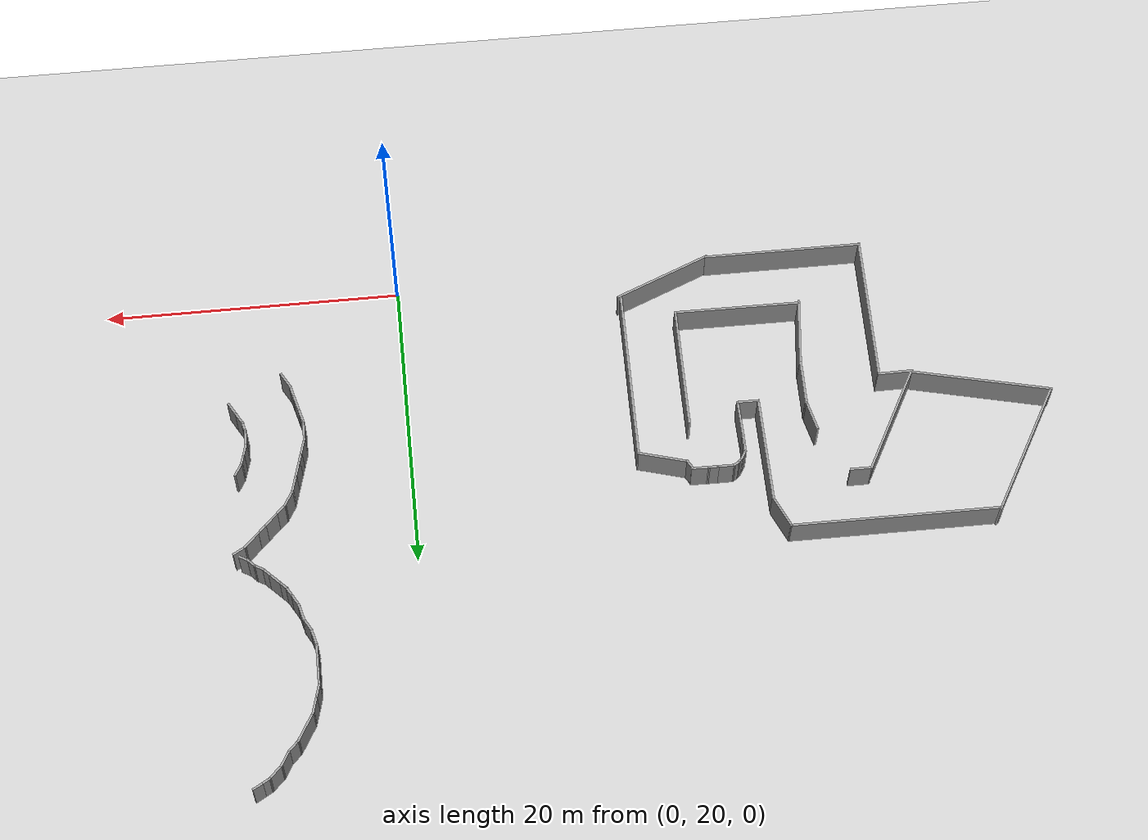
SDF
<sdf version="1.7">
 <world name="default">
  <model name="ground_plane">
   <static>1</static>
   <link name="link">
    <collision name="collision">
     <geometry><plane><normal>0 0 1</normal><size>100 100</size></plane></geometry>
     <surface><friction><ode><mu>100</mu><mu2>50</mu2></ode></friction></surface>
    </collision>
    <visual name="visual">
     <cast_shadows>0</cast_shadows>
     <geometry><plane><normal>0 0 1</normal><size>100 100</size></plane></geometry>
     <material>
      <script><uri>file://media/materials/scripts/gazebo.material</uri><name>Gazebo/Grey</name></script>
     </material>
    </visual>
   </link>
  </model>
  <model name="test2_adv">
   <pose>-29.1747 30.5612 0 0 -0 0</pose>
   <link name="Wall_0">
    <collision name="Wall_0_Collision">
     <geometry><box><size>9.6004 0.15 2.5</size></box></geometry>
     <pose>0 0 1.25 0 -0 0</pose>
    </collision>
    <visual name="Wall_0_Visual">
     <pose>0 0 1.25 0 -0 0</pose>
     <geometry><box><size>9.6004 0.15 2.5</size></box></geometry>
     <material>
      <script><uri>file://media/materials/scripts/gazebo.material</uri><name>Gazebo/Grey</name></script>
      <ambient>1 1 1 1</ambient>
     </material>
     <meta><layer>0</layer></meta>
    </visual>
    <pose>-9.52731 0.84755 0 0 -0 -0.228759</pose>
   </link>
   <link name="Wall_1">
    <collision name="Wall_1_Collision">
     <geometry><box><size>2.36819 0.15 2.5</size></box></geometry>
     <pose>0 0 1.25 0 -0 0</pose>
    </collision>
    <visual name="Wall_1_Visual">
     <pose>0 0 1.25 0 -0 0</pose>
     <geometry><box><size>2.36819 0.15 2.5</size></box></geometry>
     <material>
      <script><uri>file://media/materials/scripts/gazebo.material</uri><name>Gazebo/Grey</name></script>
      <ambient>1 1 1 1</ambient>
     </material>
     <meta><layer>0</layer></meta>
    </visual>
    <pose>-3.85634 -0.28515 0 0 -0 0.017384</pose>
   </link>
   <link name="Wall_10">
    <collision name="Wall_10_Collision">
     <geometry><box><size>1.25 0.15 2.5</size></box></geometry>
     <pose>0 0 1.25 0 -0 0</pose>
    </collision>
    <visual name="Wall_10_Visual">
     <pose>0 0 1.25 0 -0 0</pose>
     <geometry><box><size>1.25 0.15 2.5</size></box></geometry>
     <material>
      <script><uri>file://media/materials/scripts/gazebo.material</uri><name>Gazebo/Grey</name></script>
      <ambient>1 1 1 1</ambient>
     </material>
     <meta><layer>0</layer></meta>
    </visual>
    <pose>8.32385 5.58372 0 0 -0 3.14159</pose>
   </link>
   <link name="Wall_11">
    <collision name="Wall_11_Collision">
     <geometry><box><size>0.5 0.15 2.5</size></box></geometry>
     <pose>0 0 1.25 0 -0 0</pose>
    </collision>
    <visual name="Wall_11_Visual">
     <pose>0 0 1.25 0 -0 0</pose>
     <geometry><box><size>0.5 0.15 2.5</size></box></geometry>
     <material>
      <script><uri>file://media/materials/scripts/gazebo.material</uri><name>Gazebo/Grey</name></script>
      <ambient>1 1 1 1</ambient>
     </material>
     <meta><layer>0</layer></meta>
    </visual>
    <pose>7.62229 5.49622 0 0 -0 -2.61799</pose>
   </link>
   <link name="Wall_12">
    <collision name="Wall_12_Collision">
     <geometry><box><size>0.5 0.15 2.5</size></box></geometry>
     <pose>0 0 1.25 0 -0 0</pose>
    </collision>
    <visual name="Wall_12_Visual">
     <pose>0 0 1.25 0 -0 0</pose>
     <geometry><box><size>0.5 0.15 2.5</size></box></geometry>
     <material>
      <script><uri>file://media/materials/scripts/gazebo.material</uri><name>Gazebo/Grey</name></script>
      <ambient>1 1 1 1</ambient>
     </material>
     <meta><layer>0</layer></meta>
    </visual>
    <pose>7.34699 5.28497 0 0 -0 -2.35619</pose>
   </link>
   <link name="Wall_13">
    <collision name="Wall_13_Collision">
     <geometry><box><size>0.75 0.15 2.5</size></box></geometry>
     <pose>0 0 1.25 0 -0 0</pose>
    </collision>
    <visual name="Wall_13_Visual">
     <pose>0 0 1.25 0 -0 0</pose>
     <geometry><box><size>0.75 0.15 2.5</size></box></geometry>
     <material>
      <script><uri>file://media/materials/scripts/gazebo.material</uri><name>Gazebo/Grey</name></script>
      <ambient>1 1 1 1</ambient>
     </material>
     <meta><layer>0</layer></meta>
    </visual>
    <pose>7.07325 4.90142 0 0 -0 -2.0944</pose>
   </link>
   <link name="Wall_14">
    <collision name="Wall_14_Collision">
     <geometry><box><size>0.75 0.15 2.5</size></box></geometry>
     <pose>0 0 1.25 0 -0 0</pose>
    </collision>
    <visual name="Wall_14_Visual">
     <pose>0 0 1.25 0 -0 0</pose>
     <geometry><box><size>0.75 0.15 2.5</size></box></geometry>
     <material>
      <script><uri>file://media/materials/scripts/gazebo.material</uri><name>Gazebo/Grey</name></script>
      <ambient>1 1 1 1</ambient>
     </material>
     <meta><layer>0</layer></meta>
    </visual>
    <pose>6.92325 4.34161 0 0 -0 -1.5708</pose>
   </link>
   <link name="Wall_15">
    <collision name="Wall_15_Collision">
     <geometry><box><size>0.75 0.15 2.5</size></box></geometry>
     <pose>0 0 1.25 0 -0 0</pose>
    </collision>
    <visual name="Wall_15_Visual">
     <pose>0 0 1.25 0 -0 0</pose>
     <geometry><box><size>0.75 0.15 2.5</size></box></geometry>
     <material>
      <script><uri>file://media/materials/scripts/gazebo.material</uri><name>Gazebo/Grey</name></script>
      <ambient>1 1 1 1</ambient>
     </material>
     <meta><layer>0</layer></meta>
    </visual>
    <pose>6.92325 3.74161 0 0 -0 -1.5708</pose>
   </link>
   <link name="Wall_2">
    <collision name="Wall_2_Collision">
     <geometry><box><size>10.2153 0.15 2.5</size></box></geometry>
     <pose>0 0 1.25 0 -0 0</pose>
    </collision>
    <visual name="Wall_2_Visual">
     <pose>0 0 1.25 0 -0 0</pose>
     <geometry><box><size>10.2153 0.15 2.5</size></box></geometry>
     <material>
      <script><uri>file://media/materials/scripts/gazebo.material</uri><name>Gazebo/Grey</name></script>
      <ambient>1 1 1 1</ambient>
     </material>
     <meta><layer>0</layer></meta>
    </visual>
    <pose>-2.76474 -5.34473 0 0 -0 -1.57427</pose>
   </link>
   <link name="Wall_28">
    <collision name="Wall_28_Collision">
     <geometry><box><size>7.33138 0.15 2.5</size></box></geometry>
     <pose>0 0 1.25 0 -0 0</pose>
    </collision>
    <visual name="Wall_28_Visual">
     <pose>0 0 1.25 0 -0 0</pose>
     <geometry><box><size>7.33138 0.15 2.5</size></box></geometry>
     <material>
      <script><uri>file://media/materials/scripts/gazebo.material</uri><name>Gazebo/Grey</name></script>
      <ambient>1 1 1 1</ambient>
     </material>
     <meta><layer>0</layer></meta>
    </visual>
    <pose>5.5422 4.56826 0 0 -0 1.58681</pose>
   </link>
   <link name="Wall_29">
    <collision name="Wall_29_Collision">
     <geometry><box><size>2.38555 0.15 2.5</size></box></geometry>
     <pose>0 0 1.25 0 -0 0</pose>
    </collision>
    <visual name="Wall_29_Visual">
     <pose>0 0 1.25 0 -0 0</pose>
     <geometry><box><size>2.38555 0.15 2.5</size></box></geometry>
     <material>
      <script><uri>file://media/materials/scripts/gazebo.material</uri><name>Gazebo/Grey</name></script>
      <ambient>1 1 1 1</ambient>
     </material>
     <meta><layer>0</layer></meta>
    </visual>
    <pose>5.02072 9.25587 0 0 -0 1.99883</pose>
   </link>
   <link name="Wall_3">
    <collision name="Wall_3_Collision">
     <geometry><box><size>10.7514 0.15 2.5</size></box></geometry>
     <pose>0 0 1.25 0 -0 0</pose>
    </collision>
    <visual name="Wall_3_Visual">
     <pose>0 0 1.25 0 -0 0</pose>
     <geometry><box><size>10.7514 0.15 2.5</size></box></geometry>
     <material>
      <script><uri>file://media/materials/scripts/gazebo.material</uri><name>Gazebo/Grey</name></script>
      <ambient>1 1 1 1</ambient>
     </material>
     <meta><layer>0</layer></meta>
    </visual>
    <pose>2.51836 -10.3207 0 0 -0 0.001964</pose>
   </link>
   <link name="Wall_30">
    <collision name="Wall_30_Collision">
     <geometry><box><size>14.1529 0.15 2.5</size></box></geometry>
     <pose>0 0 1.25 0 -0 0</pose>
    </collision>
    <visual name="Wall_30_Visual">
     <pose>0 0 1.25 0 -0 0</pose>
     <geometry><box><size>14.1529 0.15 2.5</size></box></geometry>
     <material>
      <script><uri>file://media/materials/scripts/gazebo.material</uri><name>Gazebo/Grey</name></script>
      <ambient>1 1 1 1</ambient>
     </material>
     <meta><layer>0</layer></meta>
    </visual>
    <pose>-2.44468 10.2698 0 0 -0 -3.14116</pose>
   </link>
   <link name="Wall_31">
    <collision name="Wall_31_Collision">
     <geometry><box><size>9.72169 0.15 2.5</size></box></geometry>
     <pose>0 0 1.25 0 -0 0</pose>
    </collision>
    <visual name="Wall_31_Visual">
     <pose>0 0 1.25 0 -0 0</pose>
     <geometry><box><size>9.72169 0.15 2.5</size></box></geometry>
     <material>
      <script><uri>file://media/materials/scripts/gazebo.material</uri><name>Gazebo/Grey</name></script>
      <ambient>1 1 1 1</ambient>
     </material>
     <meta><layer>0</layer></meta>
    </visual>
    <pose>-11.6952 6.18544 0 0 -0 -2.08207</pose>
   </link>
   <link name="Wall_33">
    <collision name="Wall_33_Collision">
     <geometry><box><size>7.98429 0.15 2.5</size></box></geometry>
     <pose>0 0 1.25 0 -0 0</pose>
    </collision>
    <visual name="Wall_33_Visual">
     <pose>0 0 1.25 0 -0 0</pose>
     <geometry><box><size>7.98429 0.15 2.5</size></box></geometry>
     <material>
      <script><uri>file://media/materials/scripts/gazebo.material</uri><name>Gazebo/Grey</name></script>
      <ambient>1 1 1 1</ambient>
     </material>
     <meta><layer>0</layer></meta>
    </visual>
    <pose>-3.11952 3.15051 0 0 -0 -2.06149</pose>
   </link>
   <link name="Wall_35">
    <collision name="Wall_35_Collision">
     <geometry><box><size>1.5 0.15 2.5</size></box></geometry>
     <pose>0 0 1.25 0 -0 0</pose>
    </collision>
    <visual name="Wall_35_Visual">
     <pose>0 0 1.25 0 -0 0</pose>
     <geometry><box><size>1.5 0.15 2.5</size></box></geometry>
     <material>
      <script><uri>file://media/materials/scripts/gazebo.material</uri><name>Gazebo/Grey</name></script>
      <ambient>1 1 1 1</ambient>
     </material>
     <meta><layer>0</layer></meta>
    </visual>
    <pose>-0.598603 6.60545 0 0 -0 0</pose>
   </link>
   <link name="Wall_38">
    <collision name="Wall_38_Collision">
     <geometry><box><size>2.15459 0.15 2.5</size></box></geometry>
     <pose>0 0 1.25 0 -0 0</pose>
    </collision>
    <visual name="Wall_38_Visual">
     <pose>0 0 1.25 0 -0 0</pose>
     <geometry><box><size>2.15459 0.15 2.5</size></box></geometry>
     <material>
      <script><uri>file://media/materials/scripts/gazebo.material</uri><name>Gazebo/Grey</name></script>
      <ambient>1 1 1 1</ambient>
     </material>
     <meta><layer>0</layer></meta>
    </visual>
    <pose>2.15913 2.40387 0 0 -0 -1.3296</pose>
   </link>
   <link name="Wall_39">
    <collision name="Wall_39_Collision">
     <geometry><box><size>3.25 0.15 2.5</size></box></geometry>
     <pose>0 0 1.25 0 -0 0</pose>
    </collision>
    <visual name="Wall_39_Visual">
     <pose>0 0 1.25 0 -0 0</pose>
     <geometry><box><size>3.25 0.15 2.5</size></box></geometry>
     <material>
      <script><uri>file://media/materials/scripts/gazebo.material</uri><name>Gazebo/Grey</name></script>
      <ambient>1 1 1 1</ambient>
     </material>
     <meta><layer>0</layer></meta>
    </visual>
    <pose>2.39853 -0.066214 0 0 -0 -1.5708</pose>
   </link>
   <link name="Wall_4">
    <collision name="Wall_4_Collision">
     <geometry><box><size>6.96845 0.15 2.5</size></box></geometry>
     <pose>0 0 1.25 0 -0 0</pose>
    </collision>
    <visual name="Wall_4_Visual">
     <pose>0 0 1.25 0 -0 0</pose>
     <geometry><box><size>6.96845 0.15 2.5</size></box></geometry>
     <material>
      <script><uri>file://media/materials/scripts/gazebo.material</uri><name>Gazebo/Grey</name></script>
      <ambient>1 1 1 1</ambient>
     </material>
     <meta><layer>0</layer></meta>
    </visual>
    <pose>10.9702 -9.06261 0 0 -0 0.391489</pose>
   </link>
   <link name="Wall_40">
    <collision name="Wall_40_Collision">
     <geometry><box><size>4.7814 0.15 2.5</size></box></geometry>
     <pose>0 0 1.25 0 -0 0</pose>
    </collision>
    <visual name="Wall_40_Visual">
     <pose>0 0 1.25 0 -0 0</pose>
     <geometry><box><size>4.7814 0.15 2.5</size></box></geometry>
     <material>
      <script><uri>file://media/materials/scripts/gazebo.material</uri><name>Gazebo/Grey</name></script>
      <ambient>1 1 1 1</ambient>
     </material>
     <meta><layer>0</layer></meta>
    </visual>
    <pose>2.15913 -3.97271 0 0 -0 -1.67437</pose>
   </link>
   <link name="Wall_41">
    <collision name="Wall_41_Collision">
     <geometry><box><size>8.6189 0.15 2.5</size></box></geometry>
     <pose>0 0 1.25 0 -0 0</pose>
    </collision>
    <visual name="Wall_41_Visual">
     <pose>0 0 1.25 0 -0 0</pose>
     <geometry><box><size>8.6189 0.15 2.5</size></box></geometry>
     <material>
      <script><uri>file://media/materials/scripts/gazebo.material</uri><name>Gazebo/Grey</name></script>
      <ambient>1 1 1 1</ambient>
     </material>
     <meta><layer>0</layer></meta>
    </visual>
    <pose>6.15414 -6.18619 0 0 -0 -0.003918</pose>
   </link>
   <link name="Wall_42">
    <collision name="Wall_42_Collision">
     <geometry><box><size>8.5 0.15 2.5</size></box></geometry>
     <pose>0 0 1.25 0 -0 0</pose>
    </collision>
    <visual name="Wall_42_Visual">
     <pose>0 0 1.25 0 -0 0</pose>
     <geometry><box><size>8.5 0.15 2.5</size></box></geometry>
     <material>
      <script><uri>file://media/materials/scripts/gazebo.material</uri><name>Gazebo/Grey</name></script>
      <ambient>1 1 1 1</ambient>
     </material>
     <meta><layer>0</layer></meta>
    </visual>
    <pose>10.3886 -2.02778 0 0 -0 1.5708</pose>
   </link>
   <link name="Wall_47">
    <collision name="Wall_47_Collision">
     <geometry><box><size>1.5 0.15 2.5</size></box></geometry>
     <pose>0 0 1.25 0 -0 0</pose>
    </collision>
    <visual name="Wall_47_Visual">
     <pose>0 0 1.25 0 -0 0</pose>
     <geometry><box><size>1.5 0.15 2.5</size></box></geometry>
     <material>
      <script><uri>file://media/materials/scripts/gazebo.material</uri><name>Gazebo/Grey</name></script>
      <ambient>1 1 1 1</ambient>
     </material>
     <meta><layer>0</layer></meta>
    </visual>
    <pose>6.2747 0.978033 0 0 -0 0</pose>
   </link>
   <link name="Wall_48">
    <collision name="Wall_48_Collision">
     <geometry><box><size>2.61448 0.15 2.5</size></box></geometry>
     <pose>0 0 1.25 0 -0 0</pose>
    </collision>
    <visual name="Wall_48_Visual">
     <pose>0 0 1.25 0 -0 0</pose>
     <geometry><box><size>2.61448 0.15 2.5</size></box></geometry>
     <material>
      <script><uri>file://media/materials/scripts/gazebo.material</uri><name>Gazebo/Grey</name></script>
      <ambient>1 1 1 1</ambient>
     </material>
     <meta><layer>0</layer></meta>
    </visual>
    <pose>6.95659 2.20982 0 0 -0 1.59786</pose>
   </link>
   <link name="Wall_5">
    <collision name="Wall_5_Collision">
     <geometry><box><size>12.0357 0.15 2.5</size></box></geometry>
     <pose>0 0 1.25 0 -0 0</pose>
    </collision>
    <visual name="Wall_5_Visual">
     <pose>0 0 1.25 0 -0 0</pose>
     <geometry><box><size>12.0357 0.15 2.5</size></box></geometry>
     <material>
      <script><uri>file://media/materials/scripts/gazebo.material</uri><name>Gazebo/Grey</name></script>
      <ambient>1 1 1 1</ambient>
     </material>
     <meta><layer>0</layer></meta>
    </visual>
    <pose>13.9867 -1.81898 0 0 -0 1.56641</pose>
   </link>
   <link name="Wall_50">
    <collision name="Wall_50_Collision">
     <geometry><box><size>3.42696 0.15 2.5</size></box></geometry>
     <pose>0 0 1.25 0 -0 0</pose>
    </collision>
    <visual name="Wall_50_Visual">
     <pose>0 0 1.25 0 -0 0</pose>
     <geometry><box><size>3.42696 0.15 2.5</size></box></geometry>
     <material>
      <script><uri>file://media/materials/scripts/gazebo.material</uri><name>Gazebo/Grey</name></script>
      <ambient>1 1 1 1</ambient>
     </material>
     <meta><layer>0</layer></meta>
    </visual>
    <pose>12.4347 4.56463 0 0 -0 -0.272405</pose>
   </link>
   <link name="Wall_7">
    <collision name="Wall_7_Collision">
     <geometry><box><size>0.75 0.15 2.5</size></box></geometry>
     <pose>0 0 1.25 0 -0 0</pose>
    </collision>
    <visual name="Wall_7_Visual">
     <pose>0 0 1.25 0 -0 0</pose>
     <geometry><box><size>0.75 0.15 2.5</size></box></geometry>
     <material>
      <script><uri>file://media/materials/scripts/gazebo.material</uri><name>Gazebo/Grey</name></script>
      <ambient>1 1 1 1</ambient>
     </material>
     <meta><layer>0</layer></meta>
    </visual>
    <pose>10.7066 5.26527 0 0 -0 2.0944</pose>
   </link>
   <link name="Wall_8">
    <collision name="Wall_8_Collision">
     <geometry><box><size>1.23295 0.15 2.5</size></box></geometry>
     <pose>0 0 1.25 0 -0 0</pose>
    </collision>
    <visual name="Wall_8_Visual">
     <pose>0 0 1.25 0 -0 0</pose>
     <geometry><box><size>1.23295 0.15 2.5</size></box></geometry>
     <material>
      <script><uri>file://media/materials/scripts/gazebo.material</uri><name>Gazebo/Grey</name></script>
      <ambient>1 1 1 1</ambient>
     </material>
     <meta><layer>0</layer></meta>
    </visual>
    <pose>10.0152 5.57451 0 0 -0 3.12459</pose>
   </link>
   <link name="Wall_9">
    <collision name="Wall_9_Collision">
     <geometry><box><size>0.75 0.15 2.5</size></box></geometry>
     <pose>0 0 1.25 0 -0 0</pose>
    </collision>
    <visual name="Wall_9_Visual">
     <pose>0 0 1.25 0 -0 0</pose>
     <geometry><box><size>0.75 0.15 2.5</size></box></geometry>
     <material>
      <script><uri>file://media/materials/scripts/gazebo.material</uri><name>Gazebo/Grey</name></script>
      <ambient>1 1 1 1</ambient>
     </material>
     <meta><layer>0</layer></meta>
    </visual>
    <pose>9.17385 5.58372 0 0 -0 3.14159</pose>
   </link>
   <static>1</static>
  </model>
  <model name="map4-otto">
   <pose>24.785 39.2572 0 0 -0 0</pose>
   <link name="Wall_118">
    <collision name="Wall_118_Collision">
     <geometry><box><size>0.75 0.15 2.5</size></box></geometry>
     <pose>0 0 1.25 0 -0 0</pose>
    </collision>
    <visual name="Wall_118_Visual">
     <pose>0 0 1.25 0 -0 0</pose>
     <geometry><box><size>0.75 0.15 2.5</size></box></geometry>
     <material>
      <script><uri>file://media/materials/scripts/gazebo.material</uri><name>Gazebo/Grey</name></script>
      <ambient>1 1 1 1</ambient>
     </material>
     <meta><layer>0</layer></meta>
    </visual>
    <pose>-13.571 16.3548 0 0 -0 -2.61799</pose>
   </link>
   <link name="Wall_119">
    <collision name="Wall_119_Collision">
     <geometry><box><size>0.75 0.15 2.5</size></box></geometry>
     <pose>0 0 1.25 0 -0 0</pose>
    </collision>
    <visual name="Wall_119_Visual">
     <pose>0 0 1.25 0 -0 0</pose>
     <geometry><box><size>0.75 0.15 2.5</size></box></geometry>
     <material>
      <script><uri>file://media/materials/scripts/gazebo.material</uri><name>Gazebo/Grey</name></script>
      <ambient>1 1 1 1</ambient>
     </material>
     <meta><layer>0</layer></meta>
    </visual>
    <pose>-14.0906 16.0548 0 0 -0 -2.61799</pose>
   </link>
   <link name="Wall_120">
    <collision name="Wall_120_Collision">
     <geometry><box><size>1.25 0.15 2.5</size></box></geometry>
     <pose>0 0 1.25 0 -0 0</pose>
    </collision>
    <visual name="Wall_120_Visual">
     <pose>0 0 1.25 0 -0 0</pose>
     <geometry><box><size>1.25 0.15 2.5</size></box></geometry>
     <material>
      <script><uri>file://media/materials/scripts/gazebo.material</uri><name>Gazebo/Grey</name></script>
      <ambient>1 1 1 1</ambient>
     </material>
     <meta><layer>0</layer></meta>
    </visual>
    <pose>-14.7393 15.5159 0 0 -0 -2.35619</pose>
   </link>
   <link name="Wall_121">
    <collision name="Wall_121_Collision">
     <geometry><box><size>1.25 0.15 2.5</size></box></geometry>
     <pose>0 0 1.25 0 -0 0</pose>
    </collision>
    <visual name="Wall_121_Visual">
     <pose>0 0 1.25 0 -0 0</pose>
     <geometry><box><size>1.25 0.15 2.5</size></box></geometry>
     <material>
      <script><uri>file://media/materials/scripts/gazebo.material</uri><name>Gazebo/Grey</name></script>
      <ambient>1 1 1 1</ambient>
     </material>
     <meta><layer>0</layer></meta>
    </visual>
    <pose>-15.4033 14.6507 0 0 -0 -2.0944</pose>
   </link>
   <link name="Wall_122">
    <collision name="Wall_122_Collision">
     <geometry><box><size>1 0.15 2.5</size></box></geometry>
     <pose>0 0 1.25 0 -0 0</pose>
    </collision>
    <visual name="Wall_122_Visual">
     <pose>0 0 1.25 0 -0 0</pose>
     <geometry><box><size>1 0.15 2.5</size></box></geometry>
     <material>
      <script><uri>file://media/materials/scripts/gazebo.material</uri><name>Gazebo/Grey</name></script>
      <ambient>1 1 1 1</ambient>
     </material>
     <meta><layer>0</layer></meta>
    </visual>
    <pose>-15.9788 13.8739 0 0 -0 -2.35619</pose>
   </link>
   <link name="Wall_123">
    <collision name="Wall_123_Collision">
     <geometry><box><size>2.25 0.15 2.5</size></box></geometry>
     <pose>0 0 1.25 0 -0 0</pose>
    </collision>
    <visual name="Wall_123_Visual">
     <pose>0 0 1.25 0 -0 0</pose>
     <geometry><box><size>2.25 0.15 2.5</size></box></geometry>
     <material>
      <script><uri>file://media/materials/scripts/gazebo.material</uri><name>Gazebo/Grey</name></script>
      <ambient>1 1 1 1</ambient>
     </material>
     <meta><layer>0</layer></meta>
    </visual>
    <pose>-16.8043 12.664 0 0 -0 -2.0944</pose>
   </link>
   <link name="Wall_124">
    <collision name="Wall_124_Collision">
     <geometry><box><size>1.25 0.15 2.5</size></box></geometry>
     <pose>0 0 1.25 0 -0 0</pose>
    </collision>
    <visual name="Wall_124_Visual">
     <pose>0 0 1.25 0 -0 0</pose>
     <geometry><box><size>1.25 0.15 2.5</size></box></geometry>
     <material>
      <script><uri>file://media/materials/scripts/gazebo.material</uri><name>Gazebo/Grey</name></script>
      <ambient>1 1 1 1</ambient>
     </material>
     <meta><layer>0</layer></meta>
    </visual>
    <pose>-17.4716 11.2234 0 0 -0 -1.8326</pose>
   </link>
   <link name="Wall_125">
    <collision name="Wall_125_Collision">
     <geometry><box><size>1 0.15 2.5</size></box></geometry>
     <pose>0 0 1.25 0 -0 0</pose>
    </collision>
    <visual name="Wall_125_Visual">
     <pose>0 0 1.25 0 -0 0</pose>
     <geometry><box><size>1 0.15 2.5</size></box></geometry>
     <material>
      <script><uri>file://media/materials/scripts/gazebo.material</uri><name>Gazebo/Grey</name></script>
      <ambient>1 1 1 1</ambient>
     </material>
     <meta><layer>0</layer></meta>
    </visual>
    <pose>-17.724 10.2816 0 0 -0 -1.8326</pose>
   </link>
   <link name="Wall_126">
    <collision name="Wall_126_Collision">
     <geometry><box><size>1 0.15 2.5</size></box></geometry>
     <pose>0 0 1.25 0 -0 0</pose>
    </collision>
    <visual name="Wall_126_Visual">
     <pose>0 0 1.25 0 -0 0</pose>
     <geometry><box><size>1 0.15 2.5</size></box></geometry>
     <material>
      <script><uri>file://media/materials/scripts/gazebo.material</uri><name>Gazebo/Grey</name></script>
      <ambient>1 1 1 1</ambient>
     </material>
     <meta><layer>0</layer></meta>
    </visual>
    <pose>-17.834 9.44613 0 0 -0 -1.5708</pose>
   </link>
   <link name="Wall_127">
    <collision name="Wall_127_Collision">
     <geometry><box><size>1.25 0.15 2.5</size></box></geometry>
     <pose>0 0 1.25 0 -0 0</pose>
    </collision>
    <visual name="Wall_127_Visual">
     <pose>0 0 1.25 0 -0 0</pose>
     <geometry><box><size>1.25 0.15 2.5</size></box></geometry>
     <material>
      <script><uri>file://media/materials/scripts/gazebo.material</uri><name>Gazebo/Grey</name></script>
      <ambient>1 1 1 1</ambient>
     </material>
     <meta><layer>0</layer></meta>
    </visual>
    <pose>-17.834 8.47113 0 0 -0 -1.5708</pose>
   </link>
   <link name="Wall_128">
    <collision name="Wall_128_Collision">
     <geometry><box><size>1 0.15 2.5</size></box></geometry>
     <pose>0 0 1.25 0 -0 0</pose>
    </collision>
    <visual name="Wall_128_Visual">
     <pose>0 0 1.25 0 -0 0</pose>
     <geometry><box><size>1 0.15 2.5</size></box></geometry>
     <material>
      <script><uri>file://media/materials/scripts/gazebo.material</uri><name>Gazebo/Grey</name></script>
      <ambient>1 1 1 1</ambient>
     </material>
     <meta><layer>0</layer></meta>
    </visual>
    <pose>-17.834 7.49613 0 0 -0 -1.5708</pose>
   </link>
   <link name="Wall_129">
    <collision name="Wall_129_Collision">
     <geometry><box><size>1.25 0.15 2.5</size></box></geometry>
     <pose>0 0 1.25 0 -0 0</pose>
    </collision>
    <visual name="Wall_129_Visual">
     <pose>0 0 1.25 0 -0 0</pose>
     <geometry><box><size>1.25 0.15 2.5</size></box></geometry>
     <material>
      <script><uri>file://media/materials/scripts/gazebo.material</uri><name>Gazebo/Grey</name></script>
      <ambient>1 1 1 1</ambient>
     </material>
     <meta><layer>0</layer></meta>
    </visual>
    <pose>-17.6916 6.53987 0 0 -0 -1.309</pose>
   </link>
   <link name="Wall_131">
    <collision name="Wall_131_Collision">
     <geometry><box><size>1 0.15 2.5</size></box></geometry>
     <pose>0 0 1.25 0 -0 0</pose>
    </collision>
    <visual name="Wall_131_Visual">
     <pose>0 0 1.25 0 -0 0</pose>
     <geometry><box><size>1 0.15 2.5</size></box></geometry>
     <material>
      <script><uri>file://media/materials/scripts/gazebo.material</uri><name>Gazebo/Grey</name></script>
      <ambient>1 1 1 1</ambient>
     </material>
     <meta><layer>0</layer></meta>
    </visual>
    <pose>-17.3368 5.64055 0 0 -0 -1.0472</pose>
   </link>
   <link name="Wall_132">
    <collision name="Wall_132_Collision">
     <geometry><box><size>1.25 0.15 2.5</size></box></geometry>
     <pose>0 0 1.25 0 -0 0</pose>
    </collision>
    <visual name="Wall_132_Visual">
     <pose>0 0 1.25 0 -0 0</pose>
     <geometry><box><size>1.25 0.15 2.5</size></box></geometry>
     <material>
      <script><uri>file://media/materials/scripts/gazebo.material</uri><name>Gazebo/Grey</name></script>
      <ambient>1 1 1 1</ambient>
     </material>
     <meta><layer>0</layer></meta>
    </visual>
    <pose>-16.9819 4.74123 0 0 -0 -1.309</pose>
   </link>
   <link name="Wall_133">
    <collision name="Wall_133_Collision">
     <geometry><box><size>1 0.15 2.5</size></box></geometry>
     <pose>0 0 1.25 0 -0 0</pose>
    </collision>
    <visual name="Wall_133_Visual">
     <pose>0 0 1.25 0 -0 0</pose>
     <geometry><box><size>1 0.15 2.5</size></box></geometry>
     <material>
      <script><uri>file://media/materials/scripts/gazebo.material</uri><name>Gazebo/Grey</name></script>
      <ambient>1 1 1 1</ambient>
     </material>
     <meta><layer>0</layer></meta>
    </visual>
    <pose>-16.6271 3.84191 0 0 -0 -1.0472</pose>
   </link>
   <link name="Wall_134">
    <collision name="Wall_134_Collision">
     <geometry><box><size>0.75 0.15 2.5</size></box></geometry>
     <pose>0 0 1.25 0 -0 0</pose>
    </collision>
    <visual name="Wall_134_Visual">
     <pose>0 0 1.25 0 -0 0</pose>
     <geometry><box><size>0.75 0.15 2.5</size></box></geometry>
     <material>
      <script><uri>file://media/materials/scripts/gazebo.material</uri><name>Gazebo/Grey</name></script>
      <ambient>1 1 1 1</ambient>
     </material>
     <meta><layer>0</layer></meta>
    </visual>
    <pose>-16.2646 3.21404 0 0 -0 -1.0472</pose>
   </link>
   <link name="Wall_135">
    <collision name="Wall_135_Collision">
     <geometry><box><size>0.75 0.15 2.5</size></box></geometry>
     <pose>0 0 1.25 0 -0 0</pose>
    </collision>
    <visual name="Wall_135_Visual">
     <pose>0 0 1.25 0 -0 0</pose>
     <geometry><box><size>0.75 0.15 2.5</size></box></geometry>
     <material>
      <script><uri>file://media/materials/scripts/gazebo.material</uri><name>Gazebo/Grey</name></script>
      <ambient>1 1 1 1</ambient>
     </material>
     <meta><layer>0</layer></meta>
    </visual>
    <pose>-15.9025 2.7421 0 0 -0 -0.785398</pose>
   </link>
   <link name="Wall_136">
    <collision name="Wall_136_Collision">
     <geometry><box><size>1 0.15 2.5</size></box></geometry>
     <pose>0 0 1.25 0 -0 0</pose>
    </collision>
    <visual name="Wall_136_Visual">
     <pose>0 0 1.25 0 -0 0</pose>
     <geometry><box><size>1 0.15 2.5</size></box></geometry>
     <material>
      <script><uri>file://media/materials/scripts/gazebo.material</uri><name>Gazebo/Grey</name></script>
      <ambient>1 1 1 1</ambient>
     </material>
     <meta><layer>0</layer></meta>
    </visual>
    <pose>-15.3898 2.22945 0 0 -0 -0.785398</pose>
   </link>
   <link name="Wall_137">
    <collision name="Wall_137_Collision">
     <geometry><box><size>0.75 0.15 2.5</size></box></geometry>
     <pose>0 0 1.25 0 -0 0</pose>
    </collision>
    <visual name="Wall_137_Visual">
     <pose>0 0 1.25 0 -0 0</pose>
     <geometry><box><size>0.75 0.15 2.5</size></box></geometry>
     <material>
      <script><uri>file://media/materials/scripts/gazebo.material</uri><name>Gazebo/Grey</name></script>
      <ambient>1 1 1 1</ambient>
     </material>
     <meta><layer>0</layer></meta>
    </visual>
    <pose>-14.8772 1.7168 0 0 -0 -0.785398</pose>
   </link>
   <link name="Wall_138">
    <collision name="Wall_138_Collision">
     <geometry><box><size>0.75 0.15 2.5</size></box></geometry>
     <pose>0 0 1.25 0 -0 0</pose>
    </collision>
    <visual name="Wall_138_Visual">
     <pose>0 0 1.25 0 -0 0</pose>
     <geometry><box><size>0.75 0.15 2.5</size></box></geometry>
     <material>
      <script><uri>file://media/materials/scripts/gazebo.material</uri><name>Gazebo/Grey</name></script>
      <ambient>1 1 1 1</ambient>
     </material>
     <meta><layer>0</layer></meta>
    </visual>
    <pose>-14.4052 1.35466 0 0 -0 -0.523599</pose>
   </link>
   <link name="Wall_139">
    <collision name="Wall_139_Collision">
     <geometry><box><size>0.75 0.15 2.5</size></box></geometry>
     <pose>0 0 1.25 0 -0 0</pose>
    </collision>
    <visual name="Wall_139_Visual">
     <pose>0 0 1.25 0 -0 0</pose>
     <geometry><box><size>0.75 0.15 2.5</size></box></geometry>
     <material>
      <script><uri>file://media/materials/scripts/gazebo.material</uri><name>Gazebo/Grey</name></script>
      <ambient>1 1 1 1</ambient>
     </material>
     <meta><layer>0</layer></meta>
    </visual>
    <pose>-13.9333 0.992531 0 0 -0 -0.785398</pose>
   </link>
   <link name="Wall_140">
    <collision name="Wall_140_Collision">
     <geometry><box><size>0.75 0.15 2.5</size></box></geometry>
     <pose>0 0 1.25 0 -0 0</pose>
    </collision>
    <visual name="Wall_140_Visual">
     <pose>0 0 1.25 0 -0 0</pose>
     <geometry><box><size>0.75 0.15 2.5</size></box></geometry>
     <material>
      <script><uri>file://media/materials/scripts/gazebo.material</uri><name>Gazebo/Grey</name></script>
      <ambient>1 1 1 1</ambient>
     </material>
     <meta><layer>0</layer></meta>
    </visual>
    <pose>-13.4613 0.630399 0 0 -0 -0.523599</pose>
   </link>
   <link name="Wall_143">
    <collision name="Wall_143_Collision">
     <geometry><box><size>1 0.15 2.5</size></box></geometry>
     <pose>0 0 1.25 0 -0 0</pose>
    </collision>
    <visual name="Wall_143_Visual">
     <pose>0 0 1.25 0 -0 0</pose>
     <geometry><box><size>1 0.15 2.5</size></box></geometry>
     <material>
      <script><uri>file://media/materials/scripts/gazebo.material</uri><name>Gazebo/Grey</name></script>
      <ambient>1 1 1 1</ambient>
     </material>
     <meta><layer>0</layer></meta>
    </visual>
    <pose>-13.1799 0.042899 0 0 -0 -2.61799</pose>
   </link>
   <link name="Wall_145">
    <collision name="Wall_145_Collision">
     <geometry><box><size>1.5 0.15 2.5</size></box></geometry>
     <pose>0 0 1.25 0 -0 0</pose>
    </collision>
    <visual name="Wall_145_Visual">
     <pose>0 0 1.25 0 -0 0</pose>
     <geometry><box><size>1.5 0.15 2.5</size></box></geometry>
     <material>
      <script><uri>file://media/materials/scripts/gazebo.material</uri><name>Gazebo/Grey</name></script>
      <ambient>1 1 1 1</ambient>
     </material>
     <meta><layer>0</layer></meta>
    </visual>
    <pose>-14.0252 -0.646898 0 0 -0 -2.35619</pose>
   </link>
   <link name="Wall_146">
    <collision name="Wall_146_Collision">
     <geometry><box><size>0.75 0.15 2.5</size></box></geometry>
     <pose>0 0 1.25 0 -0 0</pose>
    </collision>
    <visual name="Wall_146_Visual">
     <pose>0 0 1.25 0 -0 0</pose>
     <geometry><box><size>0.75 0.15 2.5</size></box></geometry>
     <material>
      <script><uri>file://media/materials/scripts/gazebo.material</uri><name>Gazebo/Grey</name></script>
      <ambient>1 1 1 1</ambient>
     </material>
     <meta><layer>0</layer></meta>
    </visual>
    <pose>-14.7147 -1.33633 0 0 -0 -2.35619</pose>
   </link>
   <link name="Wall_147">
    <collision name="Wall_147_Collision">
     <geometry><box><size>1.25 0.15 2.5</size></box></geometry>
     <pose>0 0 1.25 0 -0 0</pose>
    </collision>
    <visual name="Wall_147_Visual">
     <pose>0 0 1.25 0 -0 0</pose>
     <geometry><box><size>1.25 0.15 2.5</size></box></geometry>
     <material>
      <script><uri>file://media/materials/scripts/gazebo.material</uri><name>Gazebo/Grey</name></script>
      <ambient>1 1 1 1</ambient>
     </material>
     <meta><layer>0</layer></meta>
    </visual>
    <pose>-15.3157 -1.93737 0 0 -0 -2.35619</pose>
   </link>
   <link name="Wall_148">
    <collision name="Wall_148_Collision">
     <geometry><box><size>1 0.15 2.5</size></box></geometry>
     <pose>0 0 1.25 0 -0 0</pose>
    </collision>
    <visual name="Wall_148_Visual">
     <pose>0 0 1.25 0 -0 0</pose>
     <geometry><box><size>1 0.15 2.5</size></box></geometry>
     <material>
      <script><uri>file://media/materials/scripts/gazebo.material</uri><name>Gazebo/Grey</name></script>
      <ambient>1 1 1 1</ambient>
     </material>
     <meta><layer>0</layer></meta>
    </visual>
    <pose>-16.0051 -2.6268 0 0 -0 -2.35619</pose>
   </link>
   <link name="Wall_149">
    <collision name="Wall_149_Collision">
     <geometry><box><size>1.25 0.15 2.5</size></box></geometry>
     <pose>0 0 1.25 0 -0 0</pose>
    </collision>
    <visual name="Wall_149_Visual">
     <pose>0 0 1.25 0 -0 0</pose>
     <geometry><box><size>1.25 0.15 2.5</size></box></geometry>
     <material>
      <script><uri>file://media/materials/scripts/gazebo.material</uri><name>Gazebo/Grey</name></script>
      <ambient>1 1 1 1</ambient>
     </material>
     <meta><layer>0</layer></meta>
    </visual>
    <pose>-16.5807 -3.40363 0 0 -0 -2.0944</pose>
   </link>
   <link name="Wall_150">
    <collision name="Wall_150_Collision">
     <geometry><box><size>1.25 0.15 2.5</size></box></geometry>
     <pose>0 0 1.25 0 -0 0</pose>
    </collision>
    <visual name="Wall_150_Visual">
     <pose>0 0 1.25 0 -0 0</pose>
     <geometry><box><size>1.25 0.15 2.5</size></box></geometry>
     <material>
      <script><uri>file://media/materials/scripts/gazebo.material</uri><name>Gazebo/Grey</name></script>
      <ambient>1 1 1 1</ambient>
     </material>
     <meta><layer>0</layer></meta>
    </visual>
    <pose>-16.998 -4.4112 0 0 -0 -1.8326</pose>
   </link>
   <link name="Wall_151">
    <collision name="Wall_151_Collision">
     <geometry><box><size>1.25 0.15 2.5</size></box></geometry>
     <pose>0 0 1.25 0 -0 0</pose>
    </collision>
    <visual name="Wall_151_Visual">
     <pose>0 0 1.25 0 -0 0</pose>
     <geometry><box><size>1.25 0.15 2.5</size></box></geometry>
     <material>
      <script><uri>file://media/materials/scripts/gazebo.material</uri><name>Gazebo/Grey</name></script>
      <ambient>1 1 1 1</ambient>
     </material>
     <meta><layer>0</layer></meta>
    </visual>
    <pose>-17.2827 -5.47372 0 0 -0 -1.8326</pose>
   </link>
   <link name="Wall_152">
    <collision name="Wall_152_Collision">
     <geometry><box><size>0.75 0.15 2.5</size></box></geometry>
     <pose>0 0 1.25 0 -0 0</pose>
    </collision>
    <visual name="Wall_152_Visual">
     <pose>0 0 1.25 0 -0 0</pose>
     <geometry><box><size>0.75 0.15 2.5</size></box></geometry>
     <material>
      <script><uri>file://media/materials/scripts/gazebo.material</uri><name>Gazebo/Grey</name></script>
      <ambient>1 1 1 1</ambient>
     </material>
     <meta><layer>0</layer></meta>
    </visual>
    <pose>-17.5027 -6.29476 0 0 -0 -1.8326</pose>
   </link>
   <link name="Wall_153">
    <collision name="Wall_153_Collision">
     <geometry><box><size>1.25 0.15 2.5</size></box></geometry>
     <pose>0 0 1.25 0 -0 0</pose>
    </collision>
    <visual name="Wall_153_Visual">
     <pose>0 0 1.25 0 -0 0</pose>
     <geometry><box><size>1.25 0.15 2.5</size></box></geometry>
     <material>
      <script><uri>file://media/materials/scripts/gazebo.material</uri><name>Gazebo/Grey</name></script>
      <ambient>1 1 1 1</ambient>
     </material>
     <meta><layer>0</layer></meta>
    </visual>
    <pose>-17.7227 -7.1158 0 0 -0 -1.8326</pose>
   </link>
   <link name="Wall_154">
    <collision name="Wall_154_Collision">
     <geometry><box><size>1.5 0.15 2.5</size></box></geometry>
     <pose>0 0 1.25 0 -0 0</pose>
    </collision>
    <visual name="Wall_154_Visual">
     <pose>0 0 1.25 0 -0 0</pose>
     <geometry><box><size>1.5 0.15 2.5</size></box></geometry>
     <material>
      <script><uri>file://media/materials/scripts/gazebo.material</uri><name>Gazebo/Grey</name></script>
      <ambient>1 1 1 1</ambient>
     </material>
     <meta><layer>0</layer></meta>
    </visual>
    <pose>-17.865 -8.32206 0 0 -0 -1.5708</pose>
   </link>
   <link name="Wall_155">
    <collision name="Wall_155_Collision">
     <geometry><box><size>1 0.15 2.5</size></box></geometry>
     <pose>0 0 1.25 0 -0 0</pose>
    </collision>
    <visual name="Wall_155_Visual">
     <pose>0 0 1.25 0 -0 0</pose>
     <geometry><box><size>1 0.15 2.5</size></box></geometry>
     <material>
      <script><uri>file://media/materials/scripts/gazebo.material</uri><name>Gazebo/Grey</name></script>
      <ambient>1 1 1 1</ambient>
     </material>
     <meta><layer>0</layer></meta>
    </visual>
    <pose>-17.7551 -9.40757 0 0 -0 -1.309</pose>
   </link>
   <link name="Wall_157">
    <collision name="Wall_157_Collision">
     <geometry><box><size>1.25 0.15 2.5</size></box></geometry>
     <pose>0 0 1.25 0 -0 0</pose>
    </collision>
    <visual name="Wall_157_Visual">
     <pose>0 0 1.25 0 -0 0</pose>
     <geometry><box><size>1.25 0.15 2.5</size></box></geometry>
     <material>
      <script><uri>file://media/materials/scripts/gazebo.material</uri><name>Gazebo/Grey</name></script>
      <ambient>1 1 1 1</ambient>
     </material>
     <meta><layer>0</layer></meta>
    </visual>
    <pose>-17.5027 -10.3494 0 0 -0 -1.309</pose>
   </link>
   <link name="Wall_158">
    <collision name="Wall_158_Collision">
     <geometry><box><size>1 0.15 2.5</size></box></geometry>
     <pose>0 0 1.25 0 -0 0</pose>
    </collision>
    <visual name="Wall_158_Visual">
     <pose>0 0 1.25 0 -0 0</pose>
     <geometry><box><size>1 0.15 2.5</size></box></geometry>
     <material>
      <script><uri>file://media/materials/scripts/gazebo.material</uri><name>Gazebo/Grey</name></script>
      <ambient>1 1 1 1</ambient>
     </material>
     <meta><layer>0</layer></meta>
    </visual>
    <pose>-17.2504 -11.2911 0 0 -0 -1.309</pose>
   </link>
   <link name="Wall_159">
    <collision name="Wall_159_Collision">
     <geometry><box><size>1.25 0.15 2.5</size></box></geometry>
     <pose>0 0 1.25 0 -0 0</pose>
    </collision>
    <visual name="Wall_159_Visual">
     <pose>0 0 1.25 0 -0 0</pose>
     <geometry><box><size>1.25 0.15 2.5</size></box></geometry>
     <material>
      <script><uri>file://media/materials/scripts/gazebo.material</uri><name>Gazebo/Grey</name></script>
      <ambient>1 1 1 1</ambient>
     </material>
     <meta><layer>0</layer></meta>
    </visual>
    <pose>-16.8654 -12.178 0 0 -0 -1.0472</pose>
   </link>
   <link name="Wall_57">
    <collision name="Wall_57_Collision">
     <geometry><box><size>1 0.15 2.5</size></box></geometry>
     <pose>0 0 1.25 0 -0 0</pose>
    </collision>
    <visual name="Wall_57_Visual">
     <pose>0 0 1.25 0 -0 0</pose>
     <geometry><box><size>1 0.15 2.5</size></box></geometry>
     <material>
      <script><uri>file://media/materials/scripts/gazebo.material</uri><name>Gazebo/Grey</name></script>
      <ambient>1 1 1 1</ambient>
     </material>
     <meta><layer>0</layer></meta>
    </visual>
    <pose>-13.3823 -5.81943 0 0 -0 -2.0944</pose>
   </link>
   <link name="Wall_58">
    <collision name="Wall_58_Collision">
     <geometry><box><size>0.75 0.15 2.5</size></box></geometry>
     <pose>0 0 1.25 0 -0 0</pose>
    </collision>
    <visual name="Wall_58_Visual">
     <pose>0 0 1.25 0 -0 0</pose>
     <geometry><box><size>0.75 0.15 2.5</size></box></geometry>
     <material>
      <script><uri>file://media/materials/scripts/gazebo.material</uri><name>Gazebo/Grey</name></script>
      <ambient>1 1 1 1</ambient>
     </material>
     <meta><layer>0</layer></meta>
    </visual>
    <pose>-13.6725 -6.47727 0 0 -0 -1.8326</pose>
   </link>
   <link name="Wall_59">
    <collision name="Wall_59_Collision">
     <geometry><box><size>1 0.15 2.5</size></box></geometry>
     <pose>0 0 1.25 0 -0 0</pose>
    </collision>
    <visual name="Wall_59_Visual">
     <pose>0 0 1.25 0 -0 0</pose>
     <geometry><box><size>1 0.15 2.5</size></box></geometry>
     <material>
      <script><uri>file://media/materials/scripts/gazebo.material</uri><name>Gazebo/Grey</name></script>
      <ambient>1 1 1 1</ambient>
     </material>
     <meta><layer>0</layer></meta>
    </visual>
    <pose>-13.8601 -7.17756 0 0 -0 -1.8326</pose>
   </link>
   <link name="Wall_60">
    <collision name="Wall_60_Collision">
     <geometry><box><size>1.25 0.15 2.5</size></box></geometry>
     <pose>0 0 1.25 0 -0 0</pose>
    </collision>
    <visual name="Wall_60_Visual">
     <pose>0 0 1.25 0 -0 0</pose>
     <geometry><box><size>1.25 0.15 2.5</size></box></geometry>
     <material>
      <script><uri>file://media/materials/scripts/gazebo.material</uri><name>Gazebo/Grey</name></script>
      <ambient>1 1 1 1</ambient>
     </material>
     <meta><layer>0</layer></meta>
    </visual>
    <pose>-13.9701 -8.13808 0 0 -0 -1.5708</pose>
   </link>
   <link name="Wall_61">
    <collision name="Wall_61_Collision">
     <geometry><box><size>0.75 0.15 2.5</size></box></geometry>
     <pose>0 0 1.25 0 -0 0</pose>
    </collision>
    <visual name="Wall_61_Visual">
     <pose>0 0 1.25 0 -0 0</pose>
     <geometry><box><size>0.75 0.15 2.5</size></box></geometry>
     <material>
      <script><uri>file://media/materials/scripts/gazebo.material</uri><name>Gazebo/Grey</name></script>
      <ambient>1 1 1 1</ambient>
     </material>
     <meta><layer>0</layer></meta>
    </visual>
    <pose>-13.8925 -8.97786 0 0 -0 -1.309</pose>
   </link>
   <link name="Wall_62">
    <collision name="Wall_62_Collision">
     <geometry><box><size>1 0.15 2.5</size></box></geometry>
     <pose>0 0 1.25 0 -0 0</pose>
    </collision>
    <visual name="Wall_62_Visual">
     <pose>0 0 1.25 0 -0 0</pose>
     <geometry><box><size>1 0.15 2.5</size></box></geometry>
     <material>
      <script><uri>file://media/materials/scripts/gazebo.material</uri><name>Gazebo/Grey</name></script>
      <ambient>1 1 1 1</ambient>
     </material>
     <meta><layer>0</layer></meta>
    </visual>
    <pose>-13.6023 -9.6357 0 0 -0 -1.0472</pose>
   </link>
   <link name="Wall_63">
    <collision name="Wall_63_Collision">
     <geometry><box><size>1 0.15 2.5</size></box></geometry>
     <pose>0 0 1.25 0 -0 0</pose>
    </collision>
    <visual name="Wall_63_Visual">
     <pose>0 0 1.25 0 -0 0</pose>
     <geometry><box><size>1 0.15 2.5</size></box></geometry>
     <material>
      <script><uri>file://media/materials/scripts/gazebo.material</uri><name>Gazebo/Grey</name></script>
      <ambient>1 1 1 1</ambient>
     </material>
     <meta><layer>0</layer></meta>
    </visual>
    <pose>-13.1773 -10.3718 0 0 -0 -1.0472</pose>
   </link>
   <static>1</static>
  </model>
 </world>
</sdf>
